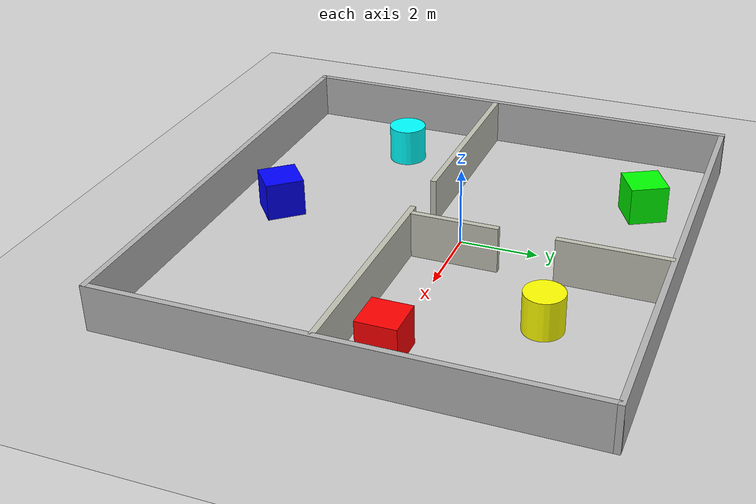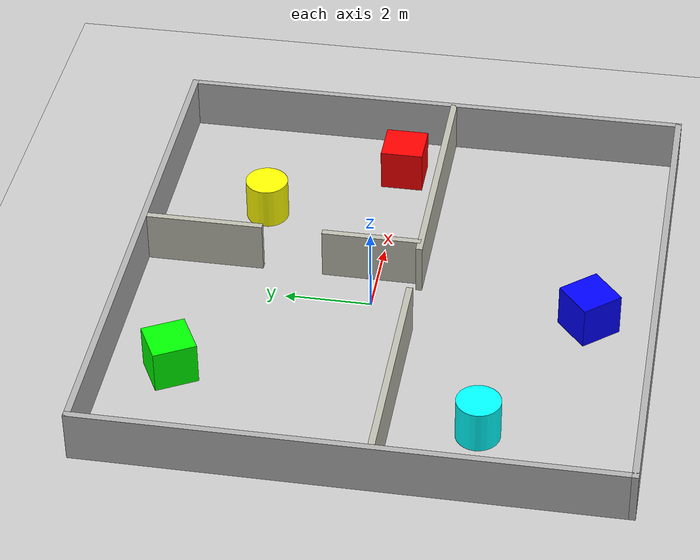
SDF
<?xml version="1.0" ?>
<sdf version="1.8">
  <world name="default">
    <physics name="1ms" type="bullet-featherstone">
      <max_step_size>0.001</max_step_size>
      <real_time_factor>1.0</real_time_factor>
    </physics>

    <!-- Plugins -->
    <plugin
      filename="gz-sim-physics-system"
      name="gz::sim::systems::Physics">
    </plugin>
    <plugin
      filename="gz-sim-sensors-system"
      name="gz::sim::systems::Sensors">
      <render_engine>ogre2</render_engine>
    </plugin>
    <plugin
      filename="gz-sim-user-commands-system"
      name="gz::sim::systems::UserCommands">
    </plugin>
    <plugin
      filename="gz-sim-scene-broadcaster-system"
      name="gz::sim::systems::SceneBroadcaster">
    </plugin>

    <!-- Lights -->
    <light type="directional" name="sun">
      <cast_shadows>true</cast_shadows>
      <pose>0 0 10 0 0 0</pose>
      <diffuse>0.8 0.8 0.8 1</diffuse>
      <specular>0.2 0.2 0.2 1</specular>
      <attenuation>
        <range>1000</range>
        <constant>0.9</constant>
        <linear>0.01</linear>
        <quadratic>0.001</quadratic>
      </attenuation>
      <direction>-0.5 0.1 -0.9</direction>
    </light>

    <!-- Ground Plane -->
    <model name="ground_plane">
      <static>true</static>
      <link name="link">
        <collision name="collision">
          <geometry>
            <plane>
              <normal>0 0 1</normal>
              <size>100 100</size>
            </plane>
          </geometry>
        </collision>
        <visual name="visual">
          <geometry>
            <plane>
              <normal>0 0 1</normal>
              <size>100 100</size>
            </plane>
          </geometry>
          <material>
            <ambient>0.8 0.8 0.8 1</ambient>
            <diffuse>0.8 0.8 0.8 1</diffuse>
            <specular>0.8 0.8 0.8 1</specular>
          </material>
        </visual>
      </link>
    </model>

    <!-- Box 1 -->
    <model name="box1">
      <pose>5 0 0.5 0 0 0</pose>
      <link name="box_link">
        <inertial>
          <inertia>
            <ixx>1</ixx>
            <ixy>0</ixy>
            <ixz>0</ixz>
            <iyy>1</iyy>
            <iyz>0</iyz>
            <izz>1</izz>
          </inertia>
          <mass>1.0</mass>
        </inertial>
        <collision name="box_collision">
          <geometry>
            <box>
              <size>1 1 1</size>
            </box>
          </geometry>
        </collision>
        <visual name="box_visual">
          <geometry>
            <box>
              <size>1 1 1</size>
            </box>
          </geometry>
          <material>
            <ambient>1 0 0 1</ambient>
            <diffuse>1 0 0 1</diffuse>
            <specular>1 0 0 1</specular>
          </material>
        </visual>
      </link>
      <static>true</static>
    </model>

    <!-- Box 2 -->
    <model name="box2">
      <pose>-3 4 0.5 0 0 0.5</pose>
      <link name="box_link">
        <inertial>
          <inertia>
            <ixx>1</ixx>
            <ixy>0</ixy>
            <ixz>0</ixz>
            <iyy>1</iyy>
            <iyz>0</iyz>
            <izz>1</izz>
          </inertia>
          <mass>1.0</mass>
        </inertial>
        <collision name="box_collision">
          <geometry>
            <box>
              <size>1 1 1</size>
            </box>
          </geometry>
        </collision>
        <visual name="box_visual">
          <geometry>
            <box>
              <size>1 1 1</size>
            </box>
          </geometry>
          <material>
            <ambient>0 1 0 1</ambient>
            <diffuse>0 1 0 1</diffuse>
            <specular>0 1 0 1</specular>
          </material>
        </visual>
      </link>
      <static>true</static>
    </model>

    <!-- Box 3 -->
    <model name="box3">
      <pose>0 -5 0.5 0 0 0.7</pose>
      <link name="box_link">
        <inertial>
          <inertia>
            <ixx>1</ixx>
            <ixy>0</ixy>
            <ixz>0</ixz>
            <iyy>1</iyy>
            <iyz>0</iyz>
            <izz>1</izz>
          </inertia>
          <mass>1.0</mass>
        </inertial>
        <collision name="box_collision">
          <geometry>
            <box>
              <size>1 1 1</size>
            </box>
          </geometry>
        </collision>
        <visual name="box_visual">
          <geometry>
            <box>
              <size>1 1 1</size>
            </box>
          </geometry>
          <material>
            <ambient>0 0 1 1</ambient>
            <diffuse>0 0 1 1</diffuse>
            <specular>0 0 1 1</specular>
          </material>
        </visual>
      </link>
      <static>true</static>
    </model>

    <!-- Cylinder 1 -->
    <model name="cylinder1">
      <pose>3 3 0.5 0 0 0</pose>
      <link name="cylinder_link">
        <inertial>
          <inertia>
            <ixx>0.1458</ixx>
            <ixy>0</ixy>
            <ixz>0</ixz>
            <iyy>0.1458</iyy>
            <iyz>0</iyz>
            <izz>0.125</izz>
          </inertia>
          <mass>1.0</mass>
        </inertial>
        <collision name="cylinder_collision">
          <geometry>
            <cylinder>
              <radius>0.5</radius>
              <length>1.0</length>
            </cylinder>
          </geometry>
        </collision>
        <visual name="cylinder_visual">
          <geometry>
            <cylinder>
              <radius>0.5</radius>
              <length>1.0</length>
            </cylinder>
          </geometry>
          <material>
            <ambient>1 1 0 1</ambient>
            <diffuse>1 1 0 1</diffuse>
            <specular>1 1 0 1</specular>
          </material>
        </visual>
      </link>
      <static>true</static>
    </model>

    <!-- Cylinder 2 -->
    <model name="cylinder2">
      <pose>-4 -3 0.5 0 0 0</pose>
      <link name="cylinder_link">
        <inertial>
          <inertia>
            <ixx>0.1458</ixx>
            <ixy>0</ixy>
            <ixz>0</ixz>
            <iyy>0.1458</iyy>
            <iyz>0</iyz>
            <izz>0.125</izz>
          </inertia>
          <mass>1.0</mass>
        </inertial>
        <collision name="cylinder_collision">
          <geometry>
            <cylinder>
              <radius>0.5</radius>
              <length>1.0</length>
            </cylinder>
          </geometry>
        </collision>
        <visual name="cylinder_visual">
          <geometry>
            <cylinder>
              <radius>0.5</radius>
              <length>1.0</length>
            </cylinder>
          </geometry>
          <material>
            <ambient>0 1 1 1</ambient>
            <diffuse>0 1 1 1</diffuse>
            <specular>0 1 1 1</specular>
          </material>
        </visual>
      </link>
      <static>true</static>
    </model>

    <!-- Exterior wall: north -->
    <model name="wall_north">
      <static>true</static>
      <pose>0.25 5.5 0.6 0 0 0</pose>
      <link name="link">
        <collision name="collision">
          <geometry><box><size>12.65 0.15 1.2</size></box></geometry>
        </collision>
        <visual name="visual">
          <geometry><box><size>12.65 0.15 1.2</size></box></geometry>
          <material>
            <ambient>0.7 0.7 0.7 1</ambient>
            <diffuse>0.7 0.7 0.7 1</diffuse>
            <specular>0.5 0.5 0.5 1</specular>
          </material>
        </visual>
      </link>
    </model>

    <!-- Exterior wall: south -->
    <model name="wall_south">
      <static>true</static>
      <pose>0.25 -6.5 0.6 0 0 0</pose>
      <link name="link">
        <collision name="collision">
          <geometry><box><size>12.65 0.15 1.2</size></box></geometry>
        </collision>
        <visual name="visual">
          <geometry><box><size>12.65 0.15 1.2</size></box></geometry>
          <material>
            <ambient>0.7 0.7 0.7 1</ambient>
            <diffuse>0.7 0.7 0.7 1</diffuse>
            <specular>0.5 0.5 0.5 1</specular>
          </material>
        </visual>
      </link>
    </model>

    <!-- Exterior wall: east -->
    <model name="wall_east">
      <static>true</static>
      <pose>6.5 -0.5 0.6 0 0 1.5708</pose>
      <link name="link">
        <collision name="collision">
          <geometry><box><size>12.15 0.15 1.2</size></box></geometry>
        </collision>
        <visual name="visual">
          <geometry><box><size>12.15 0.15 1.2</size></box></geometry>
          <material>
            <ambient>0.7 0.7 0.7 1</ambient>
            <diffuse>0.7 0.7 0.7 1</diffuse>
            <specular>0.5 0.5 0.5 1</specular>
          </material>
        </visual>
      </link>
    </model>

    <!-- Exterior wall: west -->
    <model name="wall_west">
      <static>true</static>
      <pose>-6 -0.5 0.6 0 0 1.5708</pose>
      <link name="link">
        <collision name="collision">
          <geometry><box><size>12.15 0.15 1.2</size></box></geometry>
        </collision>
        <visual name="visual">
          <geometry><box><size>12.15 0.15 1.2</size></box></geometry>
          <material>
            <ambient>0.7 0.7 0.7 1</ambient>
            <diffuse>0.7 0.7 0.7 1</diffuse>
            <specular>0.5 0.5 0.5 1</specular>
          </material>
        </visual>
      </link>
    </model>

    <!-- Interior dividing wall at y=-1, west segment (doorway gap x: -0.7 to 0.7) -->
    <model name="wall_interior_west">
      <static>true</static>
      <pose>-3.35 -1 0.6 0 0 0</pose>
      <link name="link">
        <collision name="collision">
          <geometry><box><size>5.3 0.15 1.2</size></box></geometry>
        </collision>
        <visual name="visual">
          <geometry><box><size>5.3 0.15 1.2</size></box></geometry>
          <material>
            <ambient>0.75 0.75 0.7 1</ambient>
            <diffuse>0.75 0.75 0.7 1</diffuse>
            <specular>0.5 0.5 0.5 1</specular>
          </material>
        </visual>
      </link>
    </model>

    <!-- Interior dividing wall at y=-1, east segment (doorway gap x: -0.7 to 0.7) -->
    <model name="wall_interior_east">
      <static>true</static>
      <pose>3.6 -1 0.6 0 0 0</pose>
      <link name="link">
        <collision name="collision">
          <geometry><box><size>5.8 0.15 1.2</size></box></geometry>
        </collision>
        <visual name="visual">
          <geometry><box><size>5.8 0.15 1.2</size></box></geometry>
          <material>
            <ambient>0.75 0.75 0.7 1</ambient>
            <diffuse>0.75 0.75 0.7 1</diffuse>
            <specular>0.5 0.5 0.5 1</specular>
          </material>
        </visual>
      </link>
    </model>

    <model name="wall_divider_north">
      <static>true</static>
      <pose>1.0 4.1 0.6 0 0 0</pose>
      <link name="link">
        <collision name="collision">
          <geometry><box><size>0.15 2.8 1.2</size></box></geometry>
        </collision>
        <visual name="visual">
          <geometry><box><size>0.15 2.8 1.2</size></box></geometry>
          <material>
            <ambient>0.75 0.75 0.7 1</ambient>
            <diffuse>0.75 0.75 0.7 1</diffuse>
            <specular>0.5 0.5 0.5 1</specular>
          </material>
        </visual>
      </link>
    </model>

    <model name="wall_divider_south">
      <static>true</static>
      <pose>1.0 0.15 0.6 0 0 0</pose>
      <link name="link">
        <collision name="collision">
          <geometry><box><size>0.15 2.3 1.2</size></box></geometry>
        </collision>
        <visual name="visual">
          <geometry><box><size>0.15 2.3 1.2</size></box></geometry>
          <material>
            <ambient>0.75 0.75 0.7 1</ambient>
            <diffuse>0.75 0.75 0.7 1</diffuse>
            <specular>0.5 0.5 0.5 1</specular>
          </material>
        </visual>
      </link>
    </model>
  </world>
</sdf>
